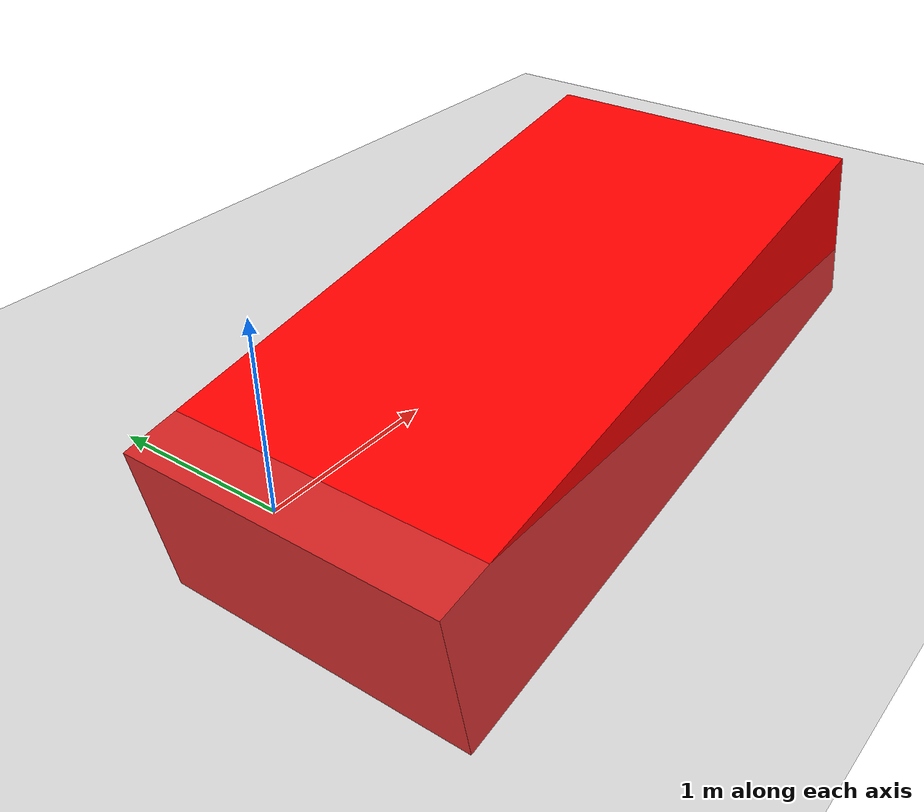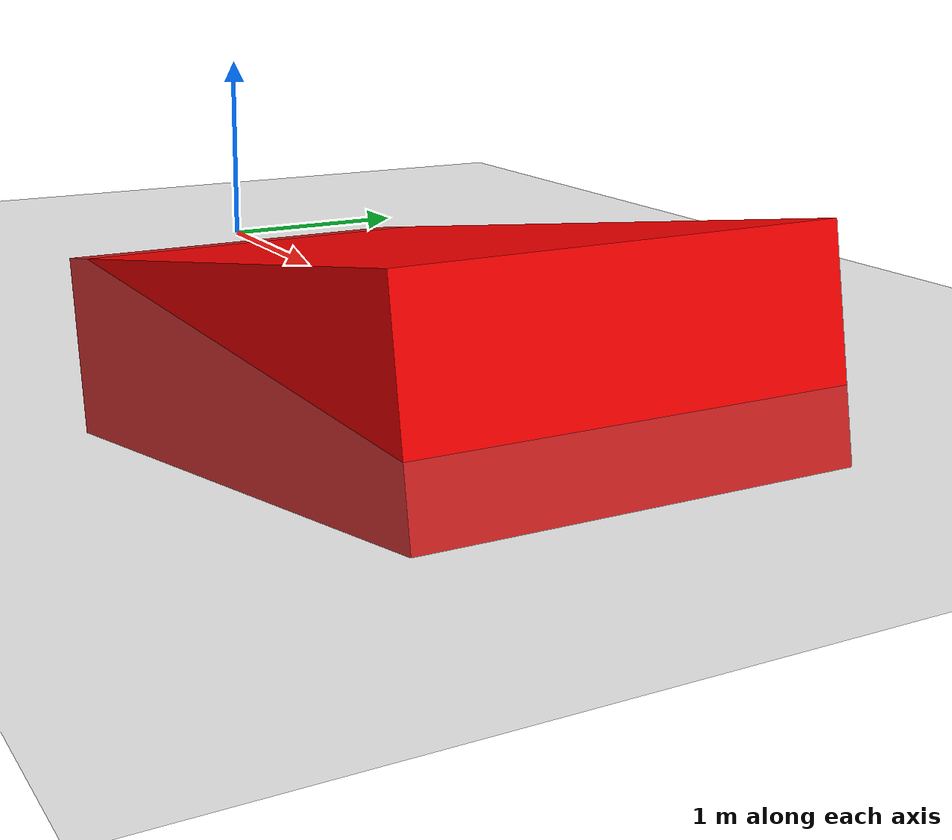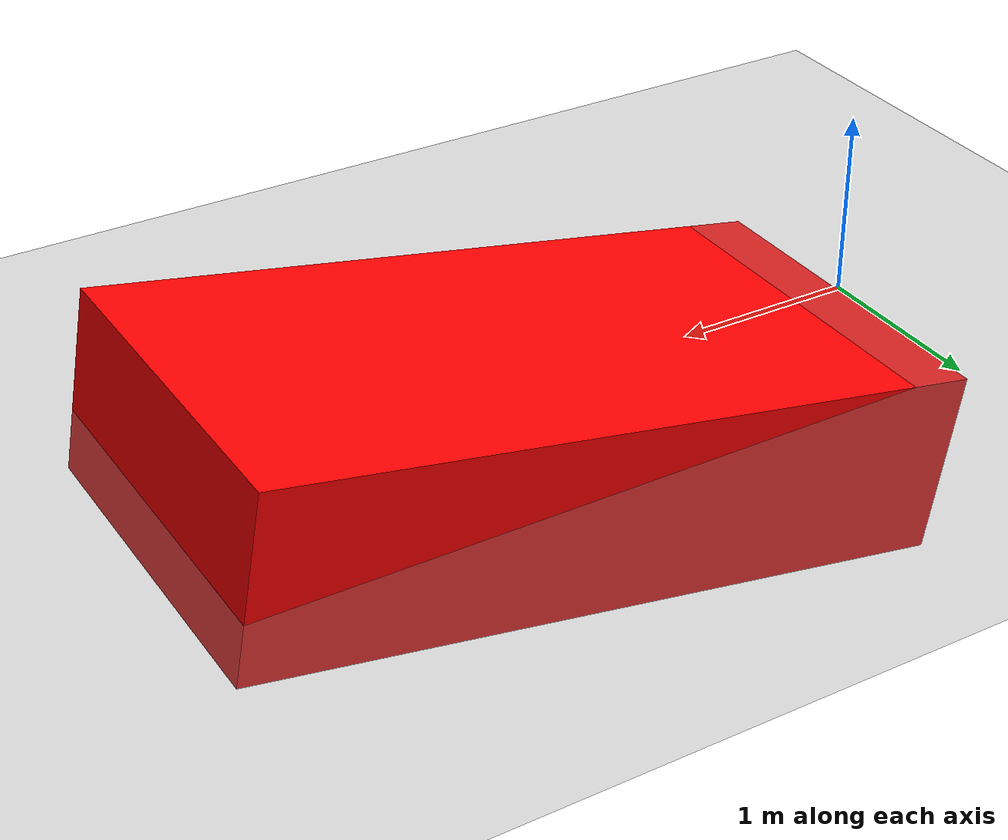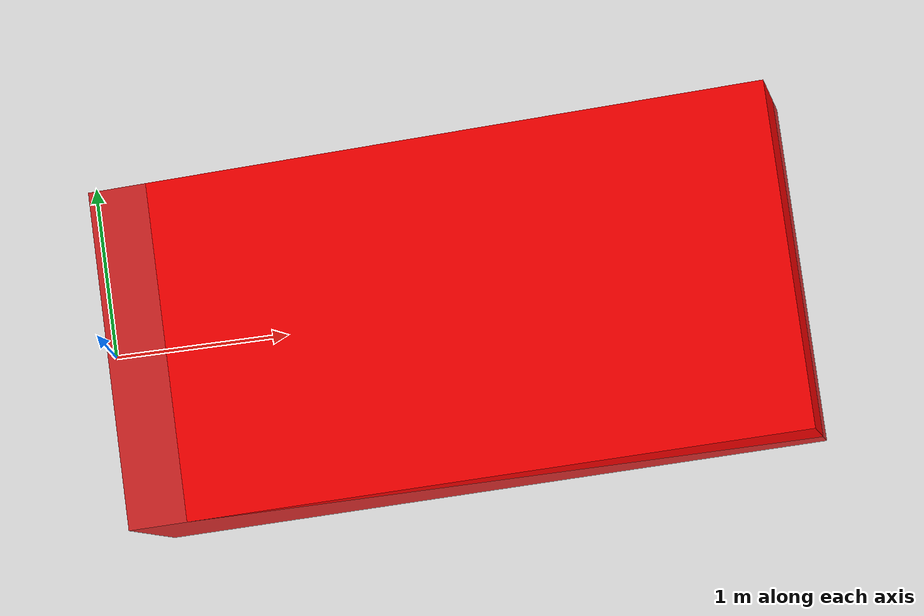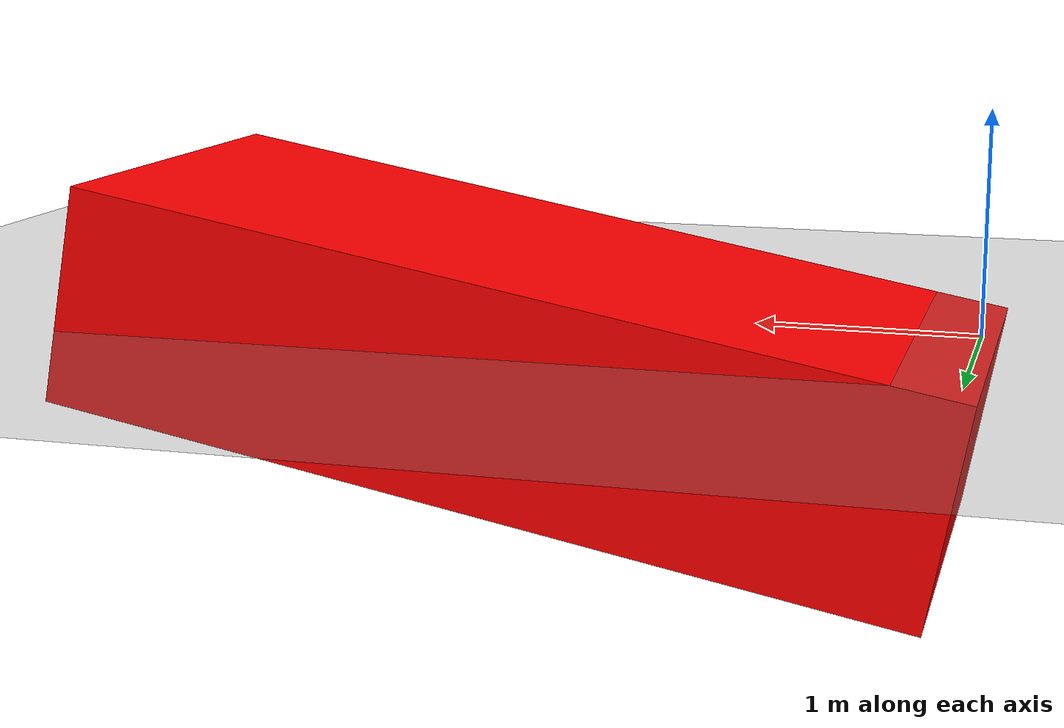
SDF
<?xml version="1.0"?>
<sdf version="1.6">
  <world name="default">
  <!-- new plugins -->
    <plugin
      filename="gz-sim-physics-system"
      name="gz::sim::systems::Physics">
    </plugin>
    <plugin
      filename="gz-sim-user-commands-system"
      name="gz::sim::systems::UserCommands">
    </plugin>
    <plugin
      filename="gz-sim-scene-broadcaster-system"
      name="gz::sim::systems::SceneBroadcaster">
    </plugin>
    <plugin
      filename="gz-sim-imu-system"
      name="gz::sim::systems::Imu">
    </plugin>

    <gravity>0 0 -1.622</gravity>

    <model name="rampa">
    <static>true</static>
      <pose>2 0 -0.2 0 1.39 0</pose>
      <link name="link">
        <collision name="collision">
          <geometry>
            <box>
              <size>1 2 4</size>
            </box>
          </geometry>
          <surface>
            <friction>
              <ode>
                <mu>0.4</mu>  <!-- Attrito statico 0.2 -->
                <mu2>0.45</mu2> <!-- Attrito laterale 0.2 -->
              </ode>
            </friction>
            <contact>
              <ode>
                <soft_cfm>0.00001</soft_cfm>
                <soft_erp>0.2</soft_erp>
              </ode>
            </contact>
          </surface>
        </collision>
        <visual name="visual">
          <geometry>
            <box>
              <size>1 2 4</size>
            </box>
          </geometry>
          <material>
            <ambient>1 0 0 1</ambient>
            <diffuse>1 0 0 1</diffuse>
            <specular>1 0 0 1</specular>
          </material>
        </visual>
      </link>
    </model>

  <model name="ground_plane">
    <static>true</static>
    <link name="link">
      <collision name="collision">
        <geometry>
          <plane>
            <size>100 100</size> <!-- Dimensione del terreno -->
          </plane>
        </geometry>
        <surface>
          <friction>
            <ode>
              <mu>0.4</mu>  <!-- Attrito statico 0.2 -->
              <mu2>0.45</mu2> <!-- Attrito laterale 0.2 -->
            </ode>
          </friction>
          <contact>
            <ode>
              <soft_cfm>0.00001</soft_cfm>
              <soft_erp>0.2</soft_erp>
            </ode>
          </contact>
        </surface>
      </collision>
      <visual name="visual">
        <geometry>
          <plane>
            <size>100 100</size>
          </plane>
        </geometry>
        <material>
          <ambient>0.5 0.5 0.5 1</ambient>  <!-- Colore ambientale -->
          <diffuse>0.5 0.5 0.5 1</diffuse>  <!-- Colore diffuso -->
          <specular>0.2 0.2 0.2 1</specular> <!-- Riflessi -->
          <transparency>0.0</transparency>  <!-- 0 = opaco, 1 = completamente trasparente -->
        </material>
      </visual>
    </link>
  </model>

    <include>
      <uri>https://fuel.gazebosim.org/1.0/OpenRobotics/models/Sun</uri>
    </include>

    <scene>
      <shadows>false</shadows>
    </scene>

    <gui fullscreen='0'>
      <camera name='user_camera'>
        <pose frame=''>0.319654 -0.235002 9.29441 0 1.5138 0.009599</pose>
        <view_controller>orbit</view_controller>
        <projection_type>perspective</projection_type>
      </camera>
    </gui>

    <physics type="ode">
      <real_time_update_rate>1000.0</real_time_update_rate>
      <max_step_size>0.001</max_step_size>
      <real_time_factor>1</real_time_factor>
      <ode>
        <solver>
          <type>quick</type>
          <iters>150</iters>
          <precon_iters>0</precon_iters>
          <sor>1.400000</sor>
          <use_dynamic_moi_rescaling>1</use_dynamic_moi_rescaling>
        </solver>
        <constraints>
          <cfm>0.00001</cfm>
          <erp>0.2</erp>
          <contact_max_correcting_vel>2000.000000</contact_max_correcting_vel>
          <contact_surface_layer>0.01000</contact_surface_layer>
        </constraints>
      </ode>
    </physics>

  </world>
</sdf>
